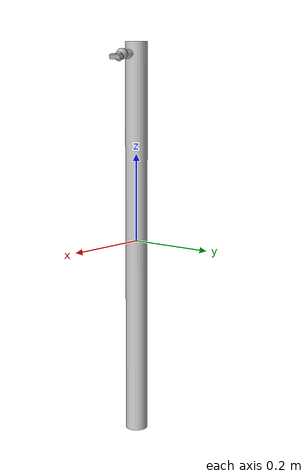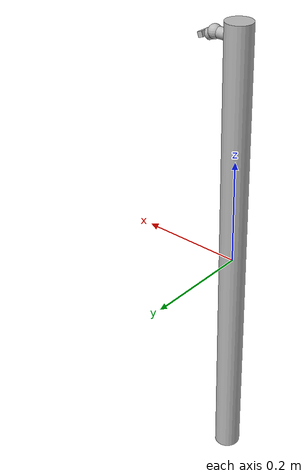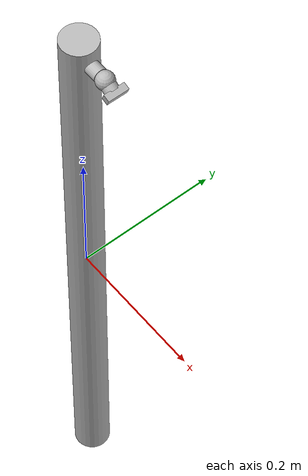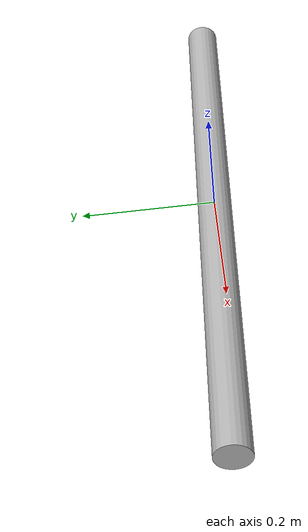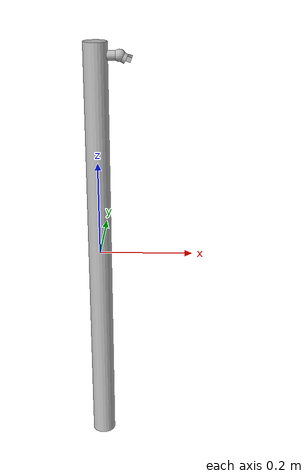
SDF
<?xml version="1.0" ?>
<sdf version="1.6">
<model name="kobra_arm">

    <link name="arm">
        <!-- Offset the arm by half the height of the wheel +
        + the height of the chassis -->
        <pose>0 0 0 0 0 0</pose>
      <inertial>
        <mass>0.5</mass>
	<!-- matrix of inertias of a solid cylinider with mass m,
	     radius r, height h is:
		|m(3*r^2+h^2)/12	0	   0    |
		|	0	m(3*r^2+h^2)/12	   0    |
		|	0		0	m*r^2/2 |
	-->
        <inertia>
          <ixx>0.033828</ixx>
          <ixy>0.0</ixy>
          <ixz>0.0</ixz>
          <iyy>0.033828</iyy>
          <iyz>0.0</iyz>
          <izz>0.000156</izz>
        </inertia>
      </inertial>
        <collision name="collision">
            <geometry>
            <cylinder>
                <radius>.025</radius>
                <length>.9</length>
            </cylinder>
            </geometry>
        </collision>
        <visual name="visual">
            <geometry>
            <cylinder>
                <radius>.025</radius>
                <length>.9</length>
            </cylinder>
            </geometry>
        </visual>
    </link>

    <link name="camera_support">
        <pose>0.025 0 0.4225 0 -1.5707 0</pose>
            <inertial>
        <mass>.1</mass>
	<!-- matrix of inertias of a solid cylinider with mass m,
	     radius r, height h is:
		|m(3*r^2+h^2)/12	0	   0    |
		|	0	m(3*r^2+h^2)/12	   0    |
		|	0		0	m*r^2/2 |
	-->
        <inertia>
          <ixx>0.0083125</ixx>
          <ixy>0.0</ixy>
          <ixz>0.0</ixz>
          <iyy>0.0083125</iyy>
          <iyz>0.0</iyz>
          <izz>0.078125</izz>
        </inertia>
      </inertial>
        <collision name="collision">
            <geometry>
            <cylinder>
                <radius>.01</radius>
                <length>.03</length>
            </cylinder>
            </geometry>
        </collision>
        <visual name="visual">
            <geometry>
            <cylinder>
                <radius>.01</radius>
                <length>.03</length>
            </cylinder>
            </geometry>
        </visual>
    </link>

    <link name="camera_support_sphere">
        <pose>0.0485 0 0.4225 0 0 0</pose>
        	<inertial>
        <mass>.1</mass>
	<!-- matrix of inertias of a solid sphere with mass m and radius r:
		|(2*m*r^2)/5		0		0    |
		|	0	(2*m*r^2)/5		0    |
		|	0		0	(2*m*r^2)/5|
	-->
        <inertia>
          <ixx>0.00000625</ixx>
          <ixy>0</ixy>
          <ixz>0.0</ixz>
          <iyy>0.00000625</iyy>
          <iyz>0.0</iyz>
          <izz>0.00000625</izz>
        </inertia>
      </inertial>
        <collision name="collision">
            <geometry>
            <sphere>
                <radius>.0125</radius>
            </sphere>
            </geometry>
        </collision>
        <visual name="visual">
            <geometry>
            <sphere>
                <radius>.0125</radius>
            </sphere>
            </geometry>
        </visual>
    </link>

    <link name="camera_support_2">
        <pose>0.0575 0 0.4175 0 2.0943 0</pose>
            <inertial>
        <mass>.1</mass>
        <inertia>
          <ixx>0.0083125</ixx>
          <ixy>0.0</ixy>
          <ixz>0.0</ixz>
          <iyy>0.0083125</iyy>
          <iyz>0.0</iyz>
          <izz>0.078125</izz>
        </inertia>
      </inertial>
        <collision name="collision">
            <geometry>
            <cylinder>
                <radius>.01</radius>
                <length>.01</length>
            </cylinder>
            </geometry>
        </collision>
        <visual name="visual">
            <geometry>
            <cylinder>
                <radius>.01</radius>
                <length>.01</length>
            </cylinder>
            </geometry>
        </visual>
    </link>

    <!--                Joints                  -->

    <joint type="fixed" name="camera_support_joint">
        <pose>0 0 0 0 0 0</pose>
        <child>camera_support</child>
        <parent>arm</parent>
    </joint>
    <joint type="fixed" name="camera_support_sphere_joint">
        <pose>0 0 0 0 0 0</pose>
        <child>camera_support_sphere</child>
        <parent>camera_support</parent>
    </joint>
    <joint type="revolute2" name="camera_support_2_joint">
        <pose>0 0 0 0 0 0</pose>
        <child>camera_support_2</child>
        <parent>camera_support_sphere</parent>
        <axis>
            <xyz>1 0 0</xyz>
        </axis>
        <axis2>
            <xyz>0 1 0</xyz>
        </axis2>
    </joint>

    <include>
        <uri>model://kobra_camera</uri>
        <pose>0.0675 0 0.417 0 0.33 0</pose>
    </include>

    <joint type="fixed" name="camera_support_sphere_joint">
        <pose>0 0 0 0 0 0</pose>
        <child>kobra_camera</child>
        <parent>camera_support_2_joint</parent>
    </joint>

</model>
</sdf>

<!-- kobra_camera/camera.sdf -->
<sdf version="1.6">
  <model name="kobra_camera">
    <pose>0 0 0.05 0 0 0</pose>
    <link name="link">
      <inertial>
        <mass>0.1</mass>
        <inertia>
          <ixx>0.000166667</ixx>
          <iyy>0.000166667</iyy>
          <izz>0.000166667</izz>
        </inertia>
      </inertial>
      <collision name="collision">
        <geometry>
          <box>
            <size>0.01 0.03 0.01</size>
          </box>
        </geometry>
      </collision>
      <visual name="visual">
        <geometry>
          <box>
            <size>0.01 0.03 0.01</size>
          </box>
        </geometry>
      </visual>
      <sensor name="camera" type="camera">
        <camera>
          <horizontal_fov>1.047</horizontal_fov>
          <image>
            <width>320</width>
            <height>240</height>
          </image>
          <clip>
            <near>0.1</near>
            <far>100</far>
          </clip>
        </camera>
        <always_on>1</always_on>
        <update_rate>30</update_rate>
        <visualize>true</visualize>
      </sensor>
    </link>
  </model>
</sdf>
